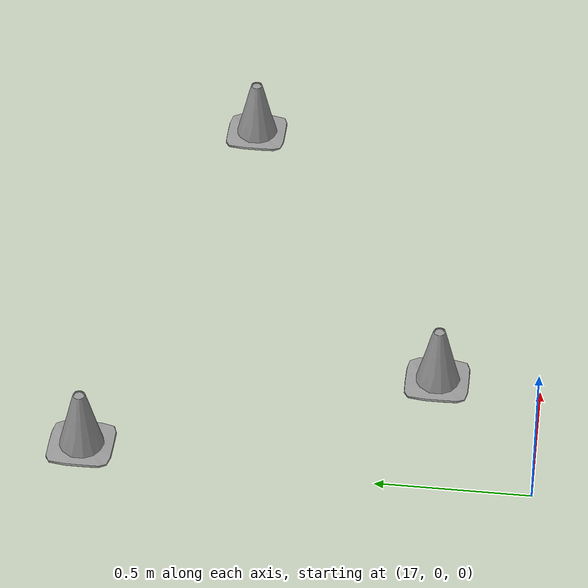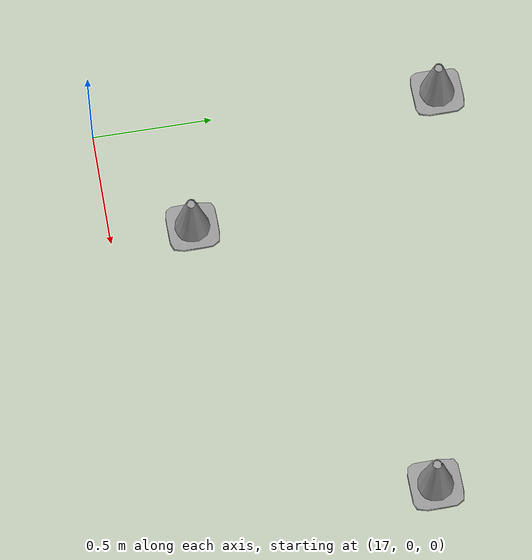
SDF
<sdf version="1.6">
 <world name="default">
  <model name="cone_mini_clone_4_clone_6_clone_3">
   <link name="link_1">
    <inertial>
     <mass>1</mass>
     <inertia>
      <ixx>0.166667</ixx>
      <ixy>0</ixy>
      <ixz>0</ixz>
      <iyy>0.166667</iyy>
      <iyz>0</iyz>
      <izz>0.166667</izz>
     </inertia>
    </inertial>
    <visual name="visual">
     <geometry>
      <mesh>
       <uri>/home/martin/catkin_ws/src/mybot/src/mybot_description/meshes/Cone/Cone_mini.dae</uri>
       <scale>1 1 1</scale>
      </mesh>
     </geometry>
     <material>
      <lighting>1</lighting>
      <script><uri>file://media/materials/scripts/gazebo.material</uri><name>Gazebo/Grey</name></script>
      <ambient>0.3 0.3 0.3 1</ambient>
      <diffuse>0.7 0.7 0.7 1</diffuse>
      <specular>0.01 0.01 0.01 1</specular>
      <emissive>0 0 0 1</emissive>
     </material>
    </visual>
    <collision name="collision">
     <geometry>
      <mesh>
       <uri>/home/martin/catkin_ws/src/mybot/src/mybot_description/meshes/Cone/Cone_mini.dae</uri>
       <scale>1 1 1</scale>
      </mesh>
     </geometry>
     <surface>
      <friction>
       <ode><mu>1</mu><mu2>1</mu2><fdir1>0 0 0</fdir1><slip1>0</slip1><slip2>0</slip2></ode>
       <torsional>
        <coefficient>1</coefficient>
        <patch_radius>0</patch_radius>
        <surface_radius>0</surface_radius>
        <use_patch_radius>1</use_patch_radius>
        <ode><slip>0</slip></ode>
       </torsional>
      </friction>
      <bounce><restitution_coefficient>0</restitution_coefficient><threshold>1e+06</threshold></bounce>
      <contact>
       <collide_without_contact>0</collide_without_contact>
       <collide_without_contact_bitmask>1</collide_without_contact_bitmask>
       <collide_bitmask>1</collide_bitmask>
       <ode>
        <soft_cfm>0</soft_cfm>
        <soft_erp>0.2</soft_erp>
        <kp>1e+13</kp>
        <kd>1</kd>
        <max_vel>0.01</max_vel>
        <min_depth>0</min_depth>
       </ode>
       <bullet>
        <split_impulse>1</split_impulse>
        <split_impulse_penetration_threshold>-0.01</split_impulse_penetration_threshold>
        <soft_cfm>0</soft_cfm>
        <soft_erp>0.2</soft_erp>
        <kp>1e+13</kp>
        <kd>1</kd>
       </bullet>
      </contact>
     </surface>
    </collision>
   </link>
   <static>1</static>
   <pose>17.0473 1.84696 -0.627558 0 -0 0</pose>
  </model>
  <model name="cone_mini_clone_4_clone_6_clone_5">
   <link name="link_1">
    <inertial>
     <mass>1</mass>
     <inertia>
      <ixx>0.166667</ixx>
      <ixy>0</ixy>
      <ixz>0</ixz>
      <iyy>0.166667</iyy>
      <iyz>0</iyz>
      <izz>0.166667</izz>
     </inertia>
    </inertial>
    <visual name="visual">
     <geometry>
      <mesh>
       <uri>/home/martin/catkin_ws/src/mybot/src/mybot_description/meshes/Cone/Cone_mini.dae</uri>
       <scale>1 1 1</scale>
      </mesh>
     </geometry>
     <material>
      <lighting>1</lighting>
      <script><uri>file://media/materials/scripts/gazebo.material</uri><name>Gazebo/Grey</name></script>
      <ambient>0.3 0.3 0.3 1</ambient>
      <diffuse>0.7 0.7 0.7 1</diffuse>
      <specular>0.01 0.01 0.01 1</specular>
      <emissive>0 0 0 1</emissive>
     </material>
    </visual>
    <collision name="collision">
     <geometry>
      <mesh>
       <uri>/home/martin/catkin_ws/src/mybot/src/mybot_description/meshes/Cone/Cone_mini.dae</uri>
       <scale>1 1 1</scale>
      </mesh>
     </geometry>
     <surface>
      <friction>
       <ode><mu>1</mu><mu2>1</mu2><fdir1>0 0 0</fdir1><slip1>0</slip1><slip2>0</slip2></ode>
       <torsional>
        <coefficient>1</coefficient>
        <patch_radius>0</patch_radius>
        <surface_radius>0</surface_radius>
        <use_patch_radius>1</use_patch_radius>
        <ode><slip>0</slip></ode>
       </torsional>
      </friction>
      <bounce><restitution_coefficient>0</restitution_coefficient><threshold>1e+06</threshold></bounce>
      <contact>
       <collide_without_contact>0</collide_without_contact>
       <collide_without_contact_bitmask>1</collide_without_contact_bitmask>
       <collide_bitmask>1</collide_bitmask>
       <ode>
        <soft_cfm>0</soft_cfm>
        <soft_erp>0.2</soft_erp>
        <kp>1e+13</kp>
        <kd>1</kd>
        <max_vel>0.01</max_vel>
        <min_depth>0</min_depth>
       </ode>
       <bullet>
        <split_impulse>1</split_impulse>
        <split_impulse_penetration_threshold>-0.01</split_impulse_penetration_threshold>
        <soft_cfm>0</soft_cfm>
        <soft_erp>0.2</soft_erp>
        <kp>1e+13</kp>
        <kd>1</kd>
       </bullet>
      </contact>
     </surface>
    </collision>
   </link>
   <static>1</static>
   <pose>17.4922 0.738837 -0.627558 0 -0 0</pose>
  </model>
  <model name="cone_mini_clone_4_clone_6_clone_6">
   <link name="link_1">
    <inertial>
     <mass>1</mass>
     <inertia>
      <ixx>0.166667</ixx>
      <ixy>0</ixy>
      <ixz>0</ixz>
      <iyy>0.166667</iyy>
      <iyz>0</iyz>
      <izz>0.166667</izz>
     </inertia>
    </inertial>
    <visual name="visual">
     <geometry>
      <mesh>
       <uri>/home/martin/catkin_ws/src/mybot/src/mybot_description/meshes/Cone/Cone_mini.dae</uri>
       <scale>1 1 1</scale>
      </mesh>
     </geometry>
     <material>
      <lighting>1</lighting>
      <script><uri>file://media/materials/scripts/gazebo.material</uri><name>Gazebo/Grey</name></script>
      <ambient>0.3 0.3 0.3 1</ambient>
      <diffuse>0.7 0.7 0.7 1</diffuse>
      <specular>0.01 0.01 0.01 1</specular>
      <emissive>0 0 0 1</emissive>
     </material>
    </visual>
    <collision name="collision">
     <geometry>
      <mesh>
       <uri>/home/martin/catkin_ws/src/mybot/src/mybot_description/meshes/Cone/Cone_mini.dae</uri>
       <scale>1 1 1</scale>
      </mesh>
     </geometry>
     <surface>
      <friction>
       <ode><mu>1</mu><mu2>1</mu2><fdir1>0 0 0</fdir1><slip1>0</slip1><slip2>0</slip2></ode>
       <torsional>
        <coefficient>1</coefficient>
        <patch_radius>0</patch_radius>
        <surface_radius>0</surface_radius>
        <use_patch_radius>1</use_patch_radius>
        <ode><slip>0</slip></ode>
       </torsional>
      </friction>
      <bounce><restitution_coefficient>0</restitution_coefficient><threshold>1e+06</threshold></bounce>
      <contact>
       <collide_without_contact>0</collide_without_contact>
       <collide_without_contact_bitmask>1</collide_without_contact_bitmask>
       <collide_bitmask>1</collide_bitmask>
       <ode>
        <soft_cfm>0</soft_cfm>
        <soft_erp>0.2</soft_erp>
        <kp>1e+13</kp>
        <kd>1</kd>
        <max_vel>0.01</max_vel>
        <min_depth>0</min_depth>
       </ode>
       <bullet>
        <split_impulse>1</split_impulse>
        <split_impulse_penetration_threshold>-0.01</split_impulse_penetration_threshold>
        <soft_cfm>0</soft_cfm>
        <soft_erp>0.2</soft_erp>
        <kp>1e+13</kp>
        <kd>1</kd>
       </bullet>
      </contact>
     </surface>
    </collision>
   </link>
   <static>1</static>
   <pose>18.7864 1.50482 -0.627558 0 -0 0</pose>
  </model>
 </world>
</sdf>
